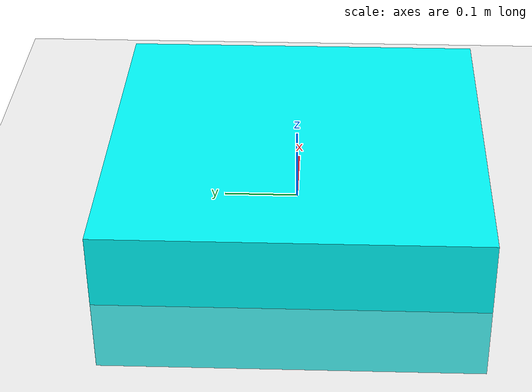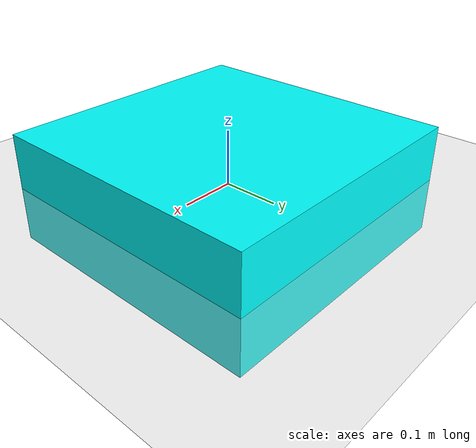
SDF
<sdf version="1.9">
 <world name="double_spiral_demo">
  <model name="ground_plane">
   <static>true</static>
   <link name="link">
    <collision name="collision">
     <geometry><plane><normal>0 0 1</normal><size>100 100</size></plane></geometry>
    </collision>
    <visual name="visual">
     <geometry><plane><normal>0 0 1</normal><size>100 100</size></plane></geometry>
     <material><ambient>0.8 0.8 0.8 1</ambient><diffuse>0.8 0.8 0.8 1</diffuse></material>
    </visual>
   </link>
  </model>
  <model name="drone_M002">
   <link name="body">
    <inertial><mass>0.5</mass><inertia><ixx>0.01</ixx><iyy>0.01</iyy><izz>0.01</izz></inertia></inertial>
    <visual name="visual">
     <geometry><box><size>0.5 0.5 0.2</size></box></geometry>
     <material><ambient>0 1 1 1</ambient><diffuse>0 1 1 1</diffuse></material>
    </visual>
   </link>
   <plugin name="gazebo::TrajectoryPlayer" filename="trajectory_player_plugin">
    <position_file>/tmp/gazebo_drone_positions/drone_M002.txt</position_file>
    <update_rate>30</update_rate>
   </plugin>
  </model>
 </world>
</sdf>
